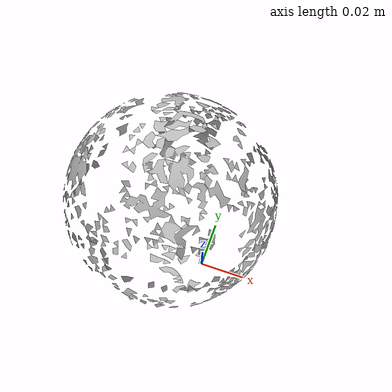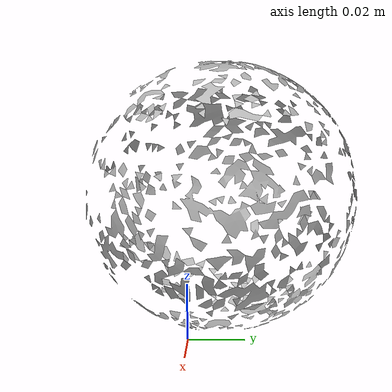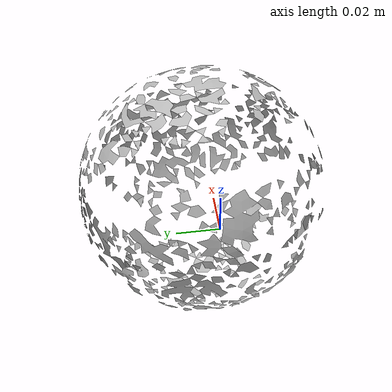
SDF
<?xml version="1.0" ?>
<sdf version="1.4">
  <model name='ycb_054_softball'>
    <link name='body'>
      <inertial>
        <mass>0.191</mass>
        <pose>-0.0196497940646 0.0108825358479 0.0468171339733 0 0 0</pose>
        <inertia>
          <ixx>0.000176057597055</ixx>
          <ixy>1.46209511613e-07</ixy>
          <ixz>-5.66781120979e-08</ixz>
          <iyy>0.000175031787614</iyy>
          <iyz>1.33722221061e-07</iyz>
          <izz>0.000176695223127</izz>
        </inertia>
      </inertial>
      <visual name='ycb_054_softball_visual'>
        <pose>0 0 0 0 0 0</pose>
        <geometry>
          <mesh>
            <uri>model://ycb_054_softball/meshes/textured.dae</uri>
          </mesh>
        </geometry>
      </visual>
      <collision name='ycb_054_softball_collision'>
        <pose>0 0 0 0 0 0</pose>
        <geometry>
          <mesh>
            <uri>model://ycb_054_softball/meshes/nontextured.stl</uri>
          </mesh>
        </geometry>
        <max_contacts>10</max_contacts>
      </collision>
    </link>
  </model>
</sdf>
